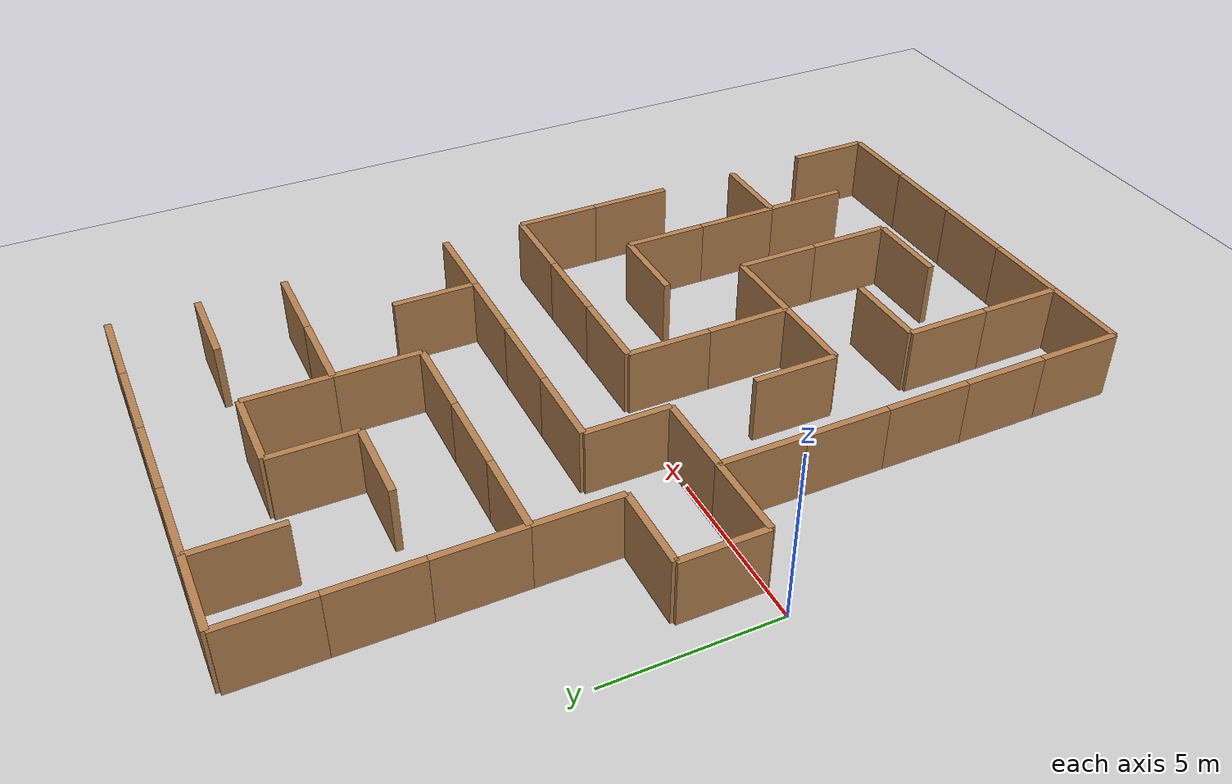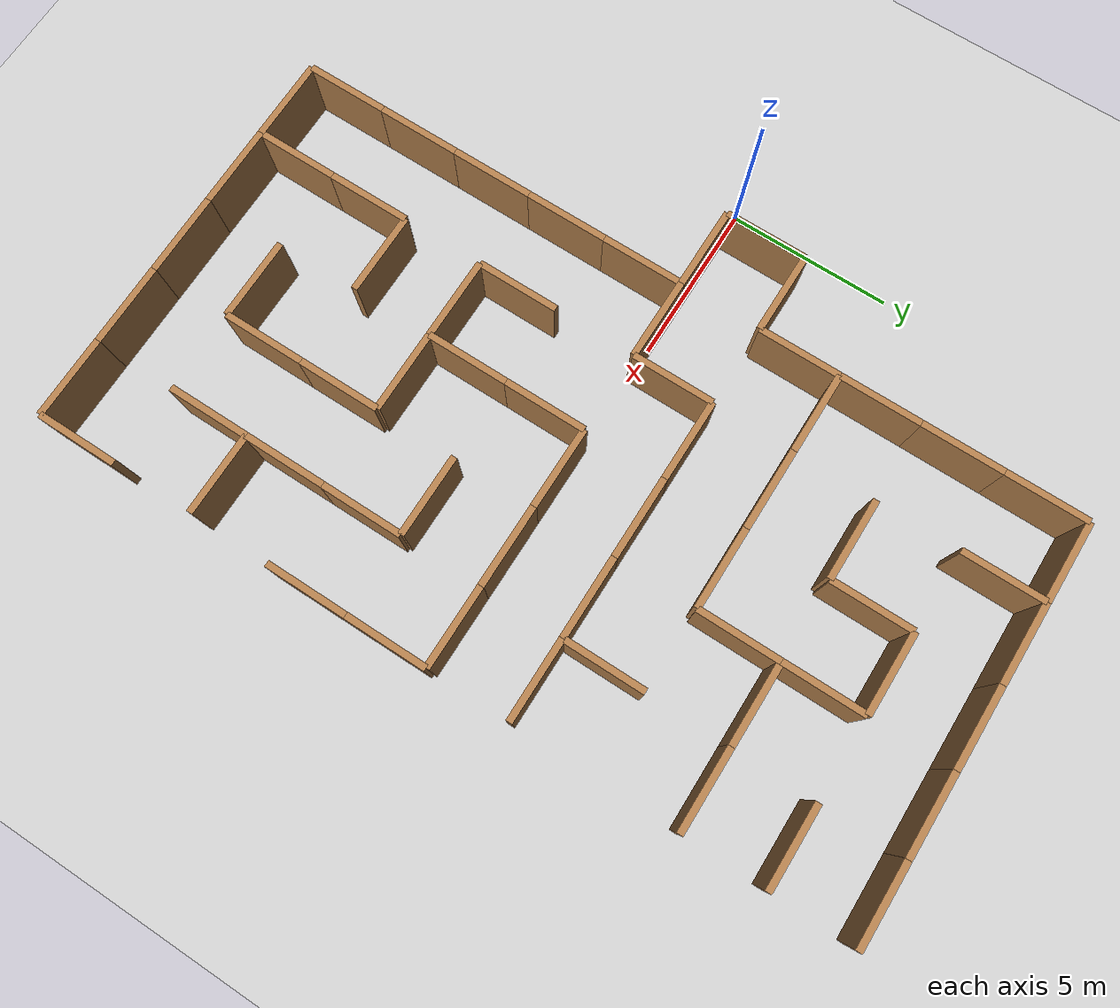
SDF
<sdf version="1.6">
 <world name="simple_maze_world">
  <include><uri>model://ground_plane</uri></include>
  <include><uri>model://sun</uri></include>
  <model name="h_wall_0">
   <static>true</static>
   <pose>3.5 -11.25 1.0 0 0 0</pose>
   <link name="link">
    <collision name="c"><geometry><box><size>0.2 2.5 2.0</size></box></geometry></collision>
    <visual name="v">
     <geometry><box><size>0.2 2.5 2.0</size></box></geometry>
     <material>
      <script><uri>file://media/materials/scripts/gazebo.material</uri><name>Gazebo/Wood</name></script>
     </material>
    </visual>
   </link>
  </model>
  <model name="h_wall_1">
   <static>true</static>
   <pose>3.5 -8.75 1.0 0 0 0</pose>
   <link name="link">
    <collision name="c"><geometry><box><size>0.2 2.5 2.0</size></box></geometry></collision>
    <visual name="v">
     <geometry><box><size>0.2 2.5 2.0</size></box></geometry>
     <material>
      <script><uri>file://media/materials/scripts/gazebo.material</uri><name>Gazebo/WoodFloor</name></script>
     </material>
    </visual>
   </link>
  </model>
  <model name="h_wall_2">
   <static>true</static>
   <pose>3.5 -6.25 1.0 0 0 0</pose>
   <link name="link">
    <collision name="c"><geometry><box><size>0.2 2.5 2.0</size></box></geometry></collision>
    <visual name="v">
     <geometry><box><size>0.2 2.5 2.0</size></box></geometry>
     <material>
      <script><uri>file://media/materials/scripts/gazebo.material</uri><name>Gazebo/Wood</name></script>
     </material>
    </visual>
   </link>
  </model>
  <model name="h_wall_3">
   <static>true</static>
   <pose>3.5 -3.75 1.0 0 0 0</pose>
   <link name="link">
    <collision name="c"><geometry><box><size>0.2 2.5 2.0</size></box></geometry></collision>
    <visual name="v">
     <geometry><box><size>0.2 2.5 2.0</size></box></geometry>
     <material>
      <script><uri>file://media/materials/scripts/gazebo.material</uri><name>Gazebo/WoodFloor</name></script>
     </material>
    </visual>
   </link>
  </model>
  <model name="h_wall_4">
   <static>true</static>
   <pose>3.5 -1.25 1.0 0 0 0</pose>
   <link name="link">
    <collision name="c"><geometry><box><size>0.2 2.5 2.0</size></box></geometry></collision>
    <visual name="v">
     <geometry><box><size>0.2 2.5 2.0</size></box></geometry>
     <material>
      <script><uri>file://media/materials/scripts/gazebo.material</uri><name>Gazebo/Wood</name></script>
     </material>
    </visual>
   </link>
  </model>
  <model name="h_wall_5">
   <static>true</static>
   <pose>3.5 3.75 1.0 0 0 0</pose>
   <link name="link">
    <collision name="c"><geometry><box><size>0.2 2.5 2.0</size></box></geometry></collision>
    <visual name="v">
     <geometry><box><size>0.2 2.5 2.0</size></box></geometry>
     <material>
      <script><uri>file://media/materials/scripts/gazebo.material</uri><name>Gazebo/WoodFloor</name></script>
     </material>
    </visual>
   </link>
  </model>
  <model name="h_wall_6">
   <static>true</static>
   <pose>3.5 6.25 1.0 0 0 0</pose>
   <link name="link">
    <collision name="c"><geometry><box><size>0.2 2.5 2.0</size></box></geometry></collision>
    <visual name="v">
     <geometry><box><size>0.2 2.5 2.0</size></box></geometry>
     <material>
      <script><uri>file://media/materials/scripts/gazebo.material</uri><name>Gazebo/Wood</name></script>
     </material>
    </visual>
   </link>
  </model>
  <model name="h_wall_7">
   <static>true</static>
   <pose>3.5 8.75 1.0 0 0 0</pose>
   <link name="link">
    <collision name="c"><geometry><box><size>0.2 2.5 2.0</size></box></geometry></collision>
    <visual name="v">
     <geometry><box><size>0.2 2.5 2.0</size></box></geometry>
     <material>
      <script><uri>file://media/materials/scripts/gazebo.material</uri><name>Gazebo/WoodFloor</name></script>
     </material>
    </visual>
   </link>
  </model>
  <model name="h_wall_8">
   <static>true</static>
   <pose>3.5 11.25 1.0 0 0 0</pose>
   <link name="link">
    <collision name="c"><geometry><box><size>0.2 2.5 2.0</size></box></geometry></collision>
    <visual name="v">
     <geometry><box><size>0.2 2.5 2.0</size></box></geometry>
     <material>
      <script><uri>file://media/materials/scripts/gazebo.material</uri><name>Gazebo/Wood</name></script>
     </material>
    </visual>
   </link>
  </model>
  <model name="h_wall_9">
   <static>true</static>
   <pose>6.0 -11.25 1.0 0 0 0</pose>
   <link name="link">
    <collision name="c"><geometry><box><size>0.2 2.5 2.0</size></box></geometry></collision>
    <visual name="v">
     <geometry><box><size>0.2 2.5 2.0</size></box></geometry>
     <material>
      <script><uri>file://media/materials/scripts/gazebo.material</uri><name>Gazebo/WoodFloor</name></script>
     </material>
    </visual>
   </link>
  </model>
  <model name="h_wall_10">
   <static>true</static>
   <pose>6.0 -8.75 1.0 0 0 0</pose>
   <link name="link">
    <collision name="c"><geometry><box><size>0.2 2.5 2.0</size></box></geometry></collision>
    <visual name="v">
     <geometry><box><size>0.2 2.5 2.0</size></box></geometry>
     <material>
      <script><uri>file://media/materials/scripts/gazebo.material</uri><name>Gazebo/Wood</name></script>
     </material>
    </visual>
   </link>
  </model>
  <model name="h_wall_11">
   <static>true</static>
   <pose>6.0 -3.75 1.0 0 0 0</pose>
   <link name="link">
    <collision name="c"><geometry><box><size>0.2 2.5 2.0</size></box></geometry></collision>
    <visual name="v">
     <geometry><box><size>0.2 2.5 2.0</size></box></geometry>
     <material>
      <script><uri>file://media/materials/scripts/gazebo.material</uri><name>Gazebo/WoodFloor</name></script>
     </material>
    </visual>
   </link>
  </model>
  <model name="h_wall_12">
   <static>true</static>
   <pose>6.0 1.25 1.0 0 0 0</pose>
   <link name="link">
    <collision name="c"><geometry><box><size>0.2 2.5 2.0</size></box></geometry></collision>
    <visual name="v">
     <geometry><box><size>0.2 2.5 2.0</size></box></geometry>
     <material>
      <script><uri>file://media/materials/scripts/gazebo.material</uri><name>Gazebo/Wood</name></script>
     </material>
    </visual>
   </link>
  </model>
  <model name="h_wall_13">
   <static>true</static>
   <pose>6.0 11.25 1.0 0 0 0</pose>
   <link name="link">
    <collision name="c"><geometry><box><size>0.2 2.5 2.0</size></box></geometry></collision>
    <visual name="v">
     <geometry><box><size>0.2 2.5 2.0</size></box></geometry>
     <material>
      <script><uri>file://media/materials/scripts/gazebo.material</uri><name>Gazebo/WoodFloor</name></script>
     </material>
    </visual>
   </link>
  </model>
  <model name="h_wall_14">
   <static>true</static>
   <pose>8.5 -3.75 1.0 0 0 0</pose>
   <link name="link">
    <collision name="c"><geometry><box><size>0.2 2.5 2.0</size></box></geometry></collision>
    <visual name="v">
     <geometry><box><size>0.2 2.5 2.0</size></box></geometry>
     <material>
      <script><uri>file://media/materials/scripts/gazebo.material</uri><name>Gazebo/Wood</name></script>
     </material>
    </visual>
   </link>
  </model>
  <model name="h_wall_15">
   <static>true</static>
   <pose>8.5 -1.25 1.0 0 0 0</pose>
   <link name="link">
    <collision name="c"><geometry><box><size>0.2 2.5 2.0</size></box></geometry></collision>
    <visual name="v">
     <geometry><box><size>0.2 2.5 2.0</size></box></geometry>
     <material>
      <script><uri>file://media/materials/scripts/gazebo.material</uri><name>Gazebo/WoodFloor</name></script>
     </material>
    </visual>
   </link>
  </model>
  <model name="h_wall_16">
   <static>true</static>
   <pose>8.5 8.75 1.0 0 0 0</pose>
   <link name="link">
    <collision name="c"><geometry><box><size>0.2 2.5 2.0</size></box></geometry></collision>
    <visual name="v">
     <geometry><box><size>0.2 2.5 2.0</size></box></geometry>
     <material>
      <script><uri>file://media/materials/scripts/gazebo.material</uri><name>Gazebo/Wood</name></script>
     </material>
    </visual>
   </link>
  </model>
  <model name="h_wall_17">
   <static>true</static>
   <pose>11.0 -8.75 1.0 0 0 0</pose>
   <link name="link">
    <collision name="c"><geometry><box><size>0.2 2.5 2.0</size></box></geometry></collision>
    <visual name="v">
     <geometry><box><size>0.2 2.5 2.0</size></box></geometry>
     <material>
      <script><uri>file://media/materials/scripts/gazebo.material</uri><name>Gazebo/WoodFloor</name></script>
     </material>
    </visual>
   </link>
  </model>
  <model name="h_wall_18">
   <static>true</static>
   <pose>11.0 -6.25 1.0 0 0 0</pose>
   <link name="link">
    <collision name="c"><geometry><box><size>0.2 2.5 2.0</size></box></geometry></collision>
    <visual name="v">
     <geometry><box><size>0.2 2.5 2.0</size></box></geometry>
     <material>
      <script><uri>file://media/materials/scripts/gazebo.material</uri><name>Gazebo/Wood</name></script>
     </material>
    </visual>
   </link>
  </model>
  <model name="h_wall_19">
   <static>true</static>
   <pose>11.0 6.25 1.0 0 0 0</pose>
   <link name="link">
    <collision name="c"><geometry><box><size>0.2 2.5 2.0</size></box></geometry></collision>
    <visual name="v">
     <geometry><box><size>0.2 2.5 2.0</size></box></geometry>
     <material>
      <script><uri>file://media/materials/scripts/gazebo.material</uri><name>Gazebo/WoodFloor</name></script>
     </material>
    </visual>
   </link>
  </model>
  <model name="h_wall_20">
   <static>true</static>
   <pose>11.0 8.75 1.0 0 0 0</pose>
   <link name="link">
    <collision name="c"><geometry><box><size>0.2 2.5 2.0</size></box></geometry></collision>
    <visual name="v">
     <geometry><box><size>0.2 2.5 2.0</size></box></geometry>
     <material>
      <script><uri>file://media/materials/scripts/gazebo.material</uri><name>Gazebo/Wood</name></script>
     </material>
    </visual>
   </link>
  </model>
  <model name="h_wall_21">
   <static>true</static>
   <pose>13.5 -8.75 1.0 0 0 0</pose>
   <link name="link">
    <collision name="c"><geometry><box><size>0.2 2.5 2.0</size></box></geometry></collision>
    <visual name="v">
     <geometry><box><size>0.2 2.5 2.0</size></box></geometry>
     <material>
      <script><uri>file://media/materials/scripts/gazebo.material</uri><name>Gazebo/WoodFloor</name></script>
     </material>
    </visual>
   </link>
  </model>
  <model name="h_wall_22">
   <static>true</static>
   <pose>13.5 -6.25 1.0 0 0 0</pose>
   <link name="link">
    <collision name="c"><geometry><box><size>0.2 2.5 2.0</size></box></geometry></collision>
    <visual name="v">
     <geometry><box><size>0.2 2.5 2.0</size></box></geometry>
     <material>
      <script><uri>file://media/materials/scripts/gazebo.material</uri><name>Gazebo/Wood</name></script>
     </material>
    </visual>
   </link>
  </model>
  <model name="h_wall_23">
   <static>true</static>
   <pose>13.5 -3.75 1.0 0 0 0</pose>
   <link name="link">
    <collision name="c"><geometry><box><size>0.2 2.5 2.0</size></box></geometry></collision>
    <visual name="v">
     <geometry><box><size>0.2 2.5 2.0</size></box></geometry>
     <material>
      <script><uri>file://media/materials/scripts/gazebo.material</uri><name>Gazebo/WoodFloor</name></script>
     </material>
    </visual>
   </link>
  </model>
  <model name="h_wall_24">
   <static>true</static>
   <pose>13.5 3.75 1.0 0 0 0</pose>
   <link name="link">
    <collision name="c"><geometry><box><size>0.2 2.5 2.0</size></box></geometry></collision>
    <visual name="v">
     <geometry><box><size>0.2 2.5 2.0</size></box></geometry>
     <material>
      <script><uri>file://media/materials/scripts/gazebo.material</uri><name>Gazebo/Wood</name></script>
     </material>
    </visual>
   </link>
  </model>
  <model name="h_wall_25">
   <static>true</static>
   <pose>16.0 -11.25 1.0 0 0 0</pose>
   <link name="link">
    <collision name="c"><geometry><box><size>0.2 2.5 2.0</size></box></geometry></collision>
    <visual name="v">
     <geometry><box><size>0.2 2.5 2.0</size></box></geometry>
     <material>
      <script><uri>file://media/materials/scripts/gazebo.material</uri><name>Gazebo/WoodFloor</name></script>
     </material>
    </visual>
   </link>
  </model>
  <model name="h_wall_26">
   <static>true</static>
   <pose>16.0 -3.75 1.0 0 0 0</pose>
   <link name="link">
    <collision name="c"><geometry><box><size>0.2 2.5 2.0</size></box></geometry></collision>
    <visual name="v">
     <geometry><box><size>0.2 2.5 2.0</size></box></geometry>
     <material>
      <script><uri>file://media/materials/scripts/gazebo.material</uri><name>Gazebo/Wood</name></script>
     </material>
    </visual>
   </link>
  </model>
  <model name="h_wall_27">
   <static>true</static>
   <pose>16.0 -1.25 1.0 0 0 0</pose>
   <link name="link">
    <collision name="c"><geometry><box><size>0.2 2.5 2.0</size></box></geometry></collision>
    <visual name="v">
     <geometry><box><size>0.2 2.5 2.0</size></box></geometry>
     <material>
      <script><uri>file://media/materials/scripts/gazebo.material</uri><name>Gazebo/WoodFloor</name></script>
     </material>
    </visual>
   </link>
  </model>
  <model name="v_wall_59">
   <static>true</static>
   <pose>4.75 -12.5 1.0 0 0 0</pose>
   <link name="link">
    <collision name="c"><geometry><box><size>2.5 0.2 2.0</size></box></geometry></collision>
    <visual name="v">
     <geometry><box><size>2.5 0.2 2.0</size></box></geometry>
     <material>
      <script><uri>file://media/materials/scripts/gazebo.material</uri><name>Gazebo/WoodFloor</name></script>
     </material>
    </visual>
   </link>
  </model>
  <model name="v_wall_60">
   <static>true</static>
   <pose>4.75 0.0 1.0 0 0 0</pose>
   <link name="link">
    <collision name="c"><geometry><box><size>2.5 0.2 2.0</size></box></geometry></collision>
    <visual name="v">
     <geometry><box><size>2.5 0.2 2.0</size></box></geometry>
     <material>
      <script><uri>file://media/materials/scripts/gazebo.material</uri><name>Gazebo/Wood</name></script>
     </material>
    </visual>
   </link>
  </model>
  <model name="v_wall_61">
   <static>true</static>
   <pose>4.75 5.0 1.0 0 0 0</pose>
   <link name="link">
    <collision name="c"><geometry><box><size>2.5 0.2 2.0</size></box></geometry></collision>
    <visual name="v">
     <geometry><box><size>2.5 0.2 2.0</size></box></geometry>
     <material>
      <script><uri>file://media/materials/scripts/gazebo.material</uri><name>Gazebo/WoodFloor</name></script>
     </material>
    </visual>
   </link>
  </model>
  <model name="v_wall_62">
   <static>true</static>
   <pose>4.75 12.5 1.0 0 0 0</pose>
   <link name="link">
    <collision name="c"><geometry><box><size>2.5 0.2 2.0</size></box></geometry></collision>
    <visual name="v">
     <geometry><box><size>2.5 0.2 2.0</size></box></geometry>
     <material>
      <script><uri>file://media/materials/scripts/gazebo.material</uri><name>Gazebo/Wood</name></script>
     </material>
    </visual>
   </link>
  </model>
  <model name="v_wall_63">
   <static>true</static>
   <pose>7.25 -12.5 1.0 0 0 0</pose>
   <link name="link">
    <collision name="c"><geometry><box><size>2.5 0.2 2.0</size></box></geometry></collision>
    <visual name="v">
     <geometry><box><size>2.5 0.2 2.0</size></box></geometry>
     <material>
      <script><uri>file://media/materials/scripts/gazebo.material</uri><name>Gazebo/WoodFloor</name></script>
     </material>
    </visual>
   </link>
  </model>
  <model name="v_wall_64">
   <static>true</static>
   <pose>7.25 -7.5 1.0 0 0 0</pose>
   <link name="link">
    <collision name="c"><geometry><box><size>2.5 0.2 2.0</size></box></geometry></collision>
    <visual name="v">
     <geometry><box><size>2.5 0.2 2.0</size></box></geometry>
     <material>
      <script><uri>file://media/materials/scripts/gazebo.material</uri><name>Gazebo/Wood</name></script>
     </material>
    </visual>
   </link>
  </model>
  <model name="v_wall_65">
   <static>true</static>
   <pose>7.25 -5.0 1.0 0 0 0</pose>
   <link name="link">
    <collision name="c"><geometry><box><size>2.5 0.2 2.0</size></box></geometry></collision>
    <visual name="v">
     <geometry><box><size>2.5 0.2 2.0</size></box></geometry>
     <material>
      <script><uri>file://media/materials/scripts/gazebo.material</uri><name>Gazebo/WoodFloor</name></script>
     </material>
    </visual>
   </link>
  </model>
  <model name="v_wall_66">
   <static>true</static>
   <pose>7.25 2.5 1.0 0 0 0</pose>
   <link name="link">
    <collision name="c"><geometry><box><size>2.5 0.2 2.0</size></box></geometry></collision>
    <visual name="v">
     <geometry><box><size>2.5 0.2 2.0</size></box></geometry>
     <material>
      <script><uri>file://media/materials/scripts/gazebo.material</uri><name>Gazebo/Wood</name></script>
     </material>
    </visual>
   </link>
  </model>
  <model name="v_wall_67">
   <static>true</static>
   <pose>7.25 5.0 1.0 0 0 0</pose>
   <link name="link">
    <collision name="c"><geometry><box><size>2.5 0.2 2.0</size></box></geometry></collision>
    <visual name="v">
     <geometry><box><size>2.5 0.2 2.0</size></box></geometry>
     <material>
      <script><uri>file://media/materials/scripts/gazebo.material</uri><name>Gazebo/WoodFloor</name></script>
     </material>
    </visual>
   </link>
  </model>
  <model name="v_wall_68">
   <static>true</static>
   <pose>7.25 7.5 1.0 0 0 0</pose>
   <link name="link">
    <collision name="c"><geometry><box><size>2.5 0.2 2.0</size></box></geometry></collision>
    <visual name="v">
     <geometry><box><size>2.5 0.2 2.0</size></box></geometry>
     <material>
      <script><uri>file://media/materials/scripts/gazebo.material</uri><name>Gazebo/Wood</name></script>
     </material>
    </visual>
   </link>
  </model>
  <model name="v_wall_69">
   <static>true</static>
   <pose>7.25 12.5 1.0 0 0 0</pose>
   <link name="link">
    <collision name="c"><geometry><box><size>2.5 0.2 2.0</size></box></geometry></collision>
    <visual name="v">
     <geometry><box><size>2.5 0.2 2.0</size></box></geometry>
     <material>
      <script><uri>file://media/materials/scripts/gazebo.material</uri><name>Gazebo/WoodFloor</name></script>
     </material>
    </visual>
   </link>
  </model>
  <model name="v_wall_70">
   <static>true</static>
   <pose>9.75 -12.5 1.0 0 0 0</pose>
   <link name="link">
    <collision name="c"><geometry><box><size>2.5 0.2 2.0</size></box></geometry></collision>
    <visual name="v">
     <geometry><box><size>2.5 0.2 2.0</size></box></geometry>
     <material>
      <script><uri>file://media/materials/scripts/gazebo.material</uri><name>Gazebo/Wood</name></script>
     </material>
    </visual>
   </link>
  </model>
  <model name="v_wall_71">
   <static>true</static>
   <pose>9.75 -10.0 1.0 0 0 0</pose>
   <link name="link">
    <collision name="c"><geometry><box><size>2.5 0.2 2.0</size></box></geometry></collision>
    <visual name="v">
     <geometry><box><size>2.5 0.2 2.0</size></box></geometry>
     <material>
      <script><uri>file://media/materials/scripts/gazebo.material</uri><name>Gazebo/WoodFloor</name></script>
     </material>
    </visual>
   </link>
  </model>
  <model name="v_wall_72">
   <static>true</static>
   <pose>9.75 -5.0 1.0 0 0 0</pose>
   <link name="link">
    <collision name="c"><geometry><box><size>2.5 0.2 2.0</size></box></geometry></collision>
    <visual name="v">
     <geometry><box><size>2.5 0.2 2.0</size></box></geometry>
     <material>
      <script><uri>file://media/materials/scripts/gazebo.material</uri><name>Gazebo/Wood</name></script>
     </material>
    </visual>
   </link>
  </model>
  <model name="v_wall_73">
   <static>true</static>
   <pose>9.75 0.0 1.0 0 0 0</pose>
   <link name="link">
    <collision name="c"><geometry><box><size>2.5 0.2 2.0</size></box></geometry></collision>
    <visual name="v">
     <geometry><box><size>2.5 0.2 2.0</size></box></geometry>
     <material>
      <script><uri>file://media/materials/scripts/gazebo.material</uri><name>Gazebo/WoodFloor</name></script>
     </material>
    </visual>
   </link>
  </model>
  <model name="v_wall_74">
   <static>true</static>
   <pose>9.75 2.5 1.0 0 0 0</pose>
   <link name="link">
    <collision name="c"><geometry><box><size>2.5 0.2 2.0</size></box></geometry></collision>
    <visual name="v">
     <geometry><box><size>2.5 0.2 2.0</size></box></geometry>
     <material>
      <script><uri>file://media/materials/scripts/gazebo.material</uri><name>Gazebo/Wood</name></script>
     </material>
    </visual>
   </link>
  </model>
  <model name="v_wall_75">
   <static>true</static>
   <pose>9.75 5.0 1.0 0 0 0</pose>
   <link name="link">
    <collision name="c"><geometry><box><size>2.5 0.2 2.0</size></box></geometry></collision>
    <visual name="v">
     <geometry><box><size>2.5 0.2 2.0</size></box></geometry>
     <material>
      <script><uri>file://media/materials/scripts/gazebo.material</uri><name>Gazebo/WoodFloor</name></script>
     </material>
    </visual>
   </link>
  </model>
  <model name="v_wall_76">
   <static>true</static>
   <pose>9.75 10.0 1.0 0 0 0</pose>
   <link name="link">
    <collision name="c"><geometry><box><size>2.5 0.2 2.0</size></box></geometry></collision>
    <visual name="v">
     <geometry><box><size>2.5 0.2 2.0</size></box></geometry>
     <material>
      <script><uri>file://media/materials/scripts/gazebo.material</uri><name>Gazebo/Wood</name></script>
     </material>
    </visual>
   </link>
  </model>
  <model name="v_wall_77">
   <static>true</static>
   <pose>9.75 12.5 1.0 0 0 0</pose>
   <link name="link">
    <collision name="c"><geometry><box><size>2.5 0.2 2.0</size></box></geometry></collision>
    <visual name="v">
     <geometry><box><size>2.5 0.2 2.0</size></box></geometry>
     <material>
      <script><uri>file://media/materials/scripts/gazebo.material</uri><name>Gazebo/WoodFloor</name></script>
     </material>
    </visual>
   </link>
  </model>
  <model name="v_wall_78">
   <static>true</static>
   <pose>12.25 -12.5 1.0 0 0 0</pose>
   <link name="link">
    <collision name="c"><geometry><box><size>2.5 0.2 2.0</size></box></geometry></collision>
    <visual name="v">
     <geometry><box><size>2.5 0.2 2.0</size></box></geometry>
     <material>
      <script><uri>file://media/materials/scripts/gazebo.material</uri><name>Gazebo/Wood</name></script>
     </material>
    </visual>
   </link>
  </model>
  <model name="v_wall_79">
   <static>true</static>
   <pose>12.25 -2.5 1.0 0 0 0</pose>
   <link name="link">
    <collision name="c"><geometry><box><size>2.5 0.2 2.0</size></box></geometry></collision>
    <visual name="v">
     <geometry><box><size>2.5 0.2 2.0</size></box></geometry>
     <material>
      <script><uri>file://media/materials/scripts/gazebo.material</uri><name>Gazebo/WoodFloor</name></script>
     </material>
    </visual>
   </link>
  </model>
  <model name="v_wall_80">
   <static>true</static>
   <pose>12.25 0.0 1.0 0 0 0</pose>
   <link name="link">
    <collision name="c"><geometry><box><size>2.5 0.2 2.0</size></box></geometry></collision>
    <visual name="v">
     <geometry><box><size>2.5 0.2 2.0</size></box></geometry>
     <material>
      <script><uri>file://media/materials/scripts/gazebo.material</uri><name>Gazebo/Wood</name></script>
     </material>
    </visual>
   </link>
  </model>
  <model name="v_wall_81">
   <static>true</static>
   <pose>12.25 2.5 1.0 0 0 0</pose>
   <link name="link">
    <collision name="c"><geometry><box><size>2.5 0.2 2.0</size></box></geometry></collision>
    <visual name="v">
     <geometry><box><size>2.5 0.2 2.0</size></box></geometry>
     <material>
      <script><uri>file://media/materials/scripts/gazebo.material</uri><name>Gazebo/WoodFloor</name></script>
     </material>
    </visual>
   </link>
  </model>
  <model name="v_wall_82">
   <static>true</static>
   <pose>12.25 7.5 1.0 0 0 0</pose>
   <link name="link">
    <collision name="c"><geometry><box><size>2.5 0.2 2.0</size></box></geometry></collision>
    <visual name="v">
     <geometry><box><size>2.5 0.2 2.0</size></box></geometry>
     <material>
      <script><uri>file://media/materials/scripts/gazebo.material</uri><name>Gazebo/Wood</name></script>
     </material>
    </visual>
   </link>
  </model>
  <model name="v_wall_83">
   <static>true</static>
   <pose>12.25 12.5 1.0 0 0 0</pose>
   <link name="link">
    <collision name="c"><geometry><box><size>2.5 0.2 2.0</size></box></geometry></collision>
    <visual name="v">
     <geometry><box><size>2.5 0.2 2.0</size></box></geometry>
     <material>
      <script><uri>file://media/materials/scripts/gazebo.material</uri><name>Gazebo/WoodFloor</name></script>
     </material>
    </visual>
   </link>
  </model>
  <model name="v_wall_84">
   <static>true</static>
   <pose>14.75 -12.5 1.0 0 0 0</pose>
   <link name="link">
    <collision name="c"><geometry><box><size>2.5 0.2 2.0</size></box></geometry></collision>
    <visual name="v">
     <geometry><box><size>2.5 0.2 2.0</size></box></geometry>
     <material>
      <script><uri>file://media/materials/scripts/gazebo.material</uri><name>Gazebo/Wood</name></script>
     </material>
    </visual>
   </link>
  </model>
  <model name="v_wall_85">
   <static>true</static>
   <pose>14.75 -7.5 1.0 0 0 0</pose>
   <link name="link">
    <collision name="c"><geometry><box><size>2.5 0.2 2.0</size></box></geometry></collision>
    <visual name="v">
     <geometry><box><size>2.5 0.2 2.0</size></box></geometry>
     <material>
      <script><uri>file://media/materials/scripts/gazebo.material</uri><name>Gazebo/WoodFloor</name></script>
     </material>
    </visual>
   </link>
  </model>
  <model name="v_wall_86">
   <static>true</static>
   <pose>14.75 0.0 1.0 0 0 0</pose>
   <link name="link">
    <collision name="c"><geometry><box><size>2.5 0.2 2.0</size></box></geometry></collision>
    <visual name="v">
     <geometry><box><size>2.5 0.2 2.0</size></box></geometry>
     <material>
      <script><uri>file://media/materials/scripts/gazebo.material</uri><name>Gazebo/Wood</name></script>
     </material>
    </visual>
   </link>
  </model>
  <model name="v_wall_87">
   <static>true</static>
   <pose>14.75 2.5 1.0 0 0 0</pose>
   <link name="link">
    <collision name="c"><geometry><box><size>2.5 0.2 2.0</size></box></geometry></collision>
    <visual name="v">
     <geometry><box><size>2.5 0.2 2.0</size></box></geometry>
     <material>
      <script><uri>file://media/materials/scripts/gazebo.material</uri><name>Gazebo/WoodFloor</name></script>
     </material>
    </visual>
   </link>
  </model>
  <model name="v_wall_88">
   <static>true</static>
   <pose>14.75 7.5 1.0 0 0 0</pose>
   <link name="link">
    <collision name="c"><geometry><box><size>2.5 0.2 2.0</size></box></geometry></collision>
    <visual name="v">
     <geometry><box><size>2.5 0.2 2.0</size></box></geometry>
     <material>
      <script><uri>file://media/materials/scripts/gazebo.material</uri><name>Gazebo/Wood</name></script>
     </material>
    </visual>
   </link>
  </model>
  <model name="v_wall_89">
   <static>true</static>
   <pose>14.75 10.0 1.0 0 0 0</pose>
   <link name="link">
    <collision name="c"><geometry><box><size>2.5 0.2 2.0</size></box></geometry></collision>
    <visual name="v">
     <geometry><box><size>2.5 0.2 2.0</size></box></geometry>
     <material>
      <script><uri>file://media/materials/scripts/gazebo.material</uri><name>Gazebo/WoodFloor</name></script>
     </material>
    </visual>
   </link>
  </model>
  <model name="v_wall_90">
   <static>true</static>
   <pose>14.75 12.5 1.0 0 0 0</pose>
   <link name="link">
    <collision name="c"><geometry><box><size>2.5 0.2 2.0</size></box></geometry></collision>
    <visual name="v">
     <geometry><box><size>2.5 0.2 2.0</size></box></geometry>
     <material>
      <script><uri>file://media/materials/scripts/gazebo.material</uri><name>Gazebo/Wood</name></script>
     </material>
    </visual>
   </link>
  </model>
  <model name="entrance_left">
   <static>true</static>
   <pose>2.25 0.0 1.0 0 0 0</pose>
   <link name="link">
    <collision name="c"><geometry><box><size>2.5 0.2 2.0</size></box></geometry></collision>
    <visual name="v">
     <geometry><box><size>2.5 0.2 2.0</size></box></geometry>
     <material>
      <script><uri>file://media/materials/scripts/gazebo.material</uri><name>Gazebo/Wood</name></script>
     </material>
    </visual>
   </link>
  </model>
  <model name="entrance_right">
   <static>true</static>
   <pose>2.25 2.5 1.0 0 0 0</pose>
   <link name="link">
    <collision name="c"><geometry><box><size>2.5 0.2 2.0</size></box></geometry></collision>
    <visual name="v">
     <geometry><box><size>2.5 0.2 2.0</size></box></geometry>
     <material>
      <script><uri>file://media/materials/scripts/gazebo.material</uri><name>Gazebo/Wood</name></script>
     </material>
    </visual>
   </link>
  </model>
  <model name="entrance_back">
   <static>true</static>
   <pose>1.0 1.25 1.0 0 0 0</pose>
   <link name="link">
    <collision name="c"><geometry><box><size>0.2 2.5 2.0</size></box></geometry></collision>
    <visual name="v">
     <geometry><box><size>0.2 2.5 2.0</size></box></geometry>
     <material>
      <script><uri>file://media/materials/scripts/gazebo.material</uri><name>Gazebo/Wood</name></script>
     </material>
    </visual>
   </link>
  </model>
 </world>
</sdf>
